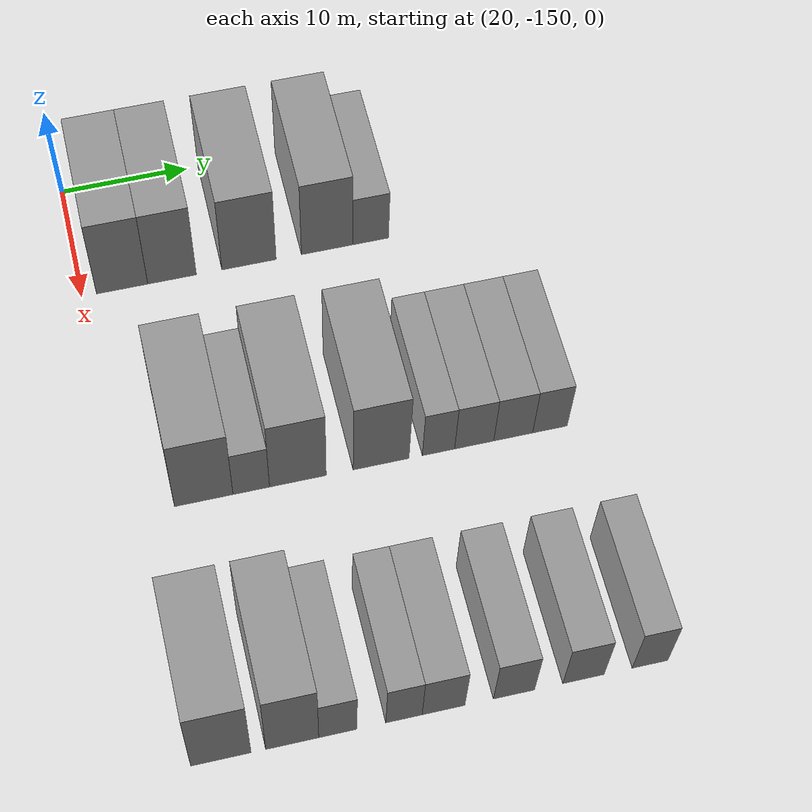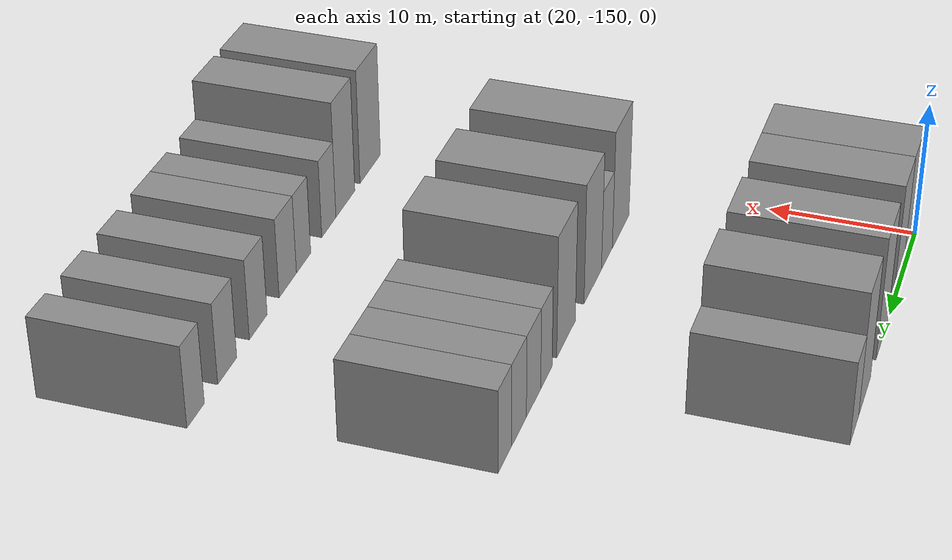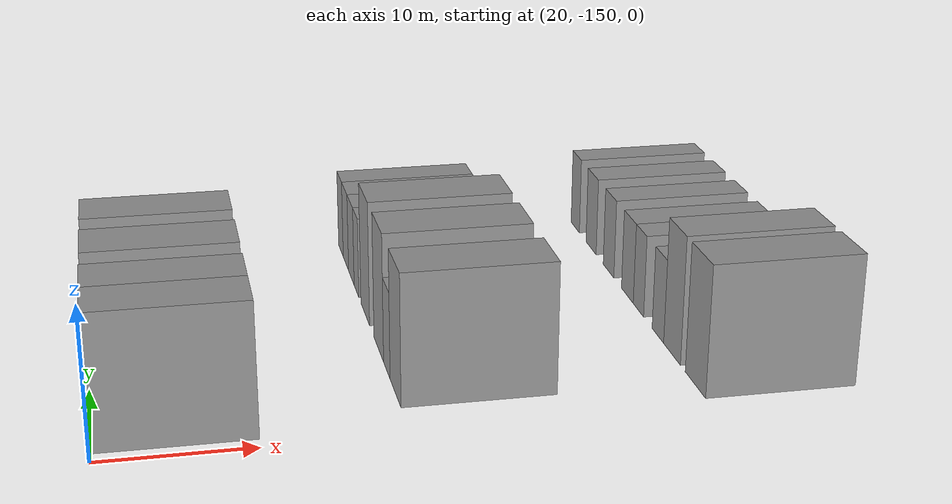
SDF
<sdf version="1.6">
 <world name="default">
  <model name="building_19">
   <static>1</static>
   <pose>25.0000 -146.8874 0 0.000000 0.000000 0.000000</pose>
   <link name="link">
    <pose>0 0 4.50 0 0 0</pose>
    <collision name="collision"><geometry><box><size>10.0000 3.9758 9.0000</size></box></geometry></collision>
    <visual name="visual">
     <cast_shadows>0</cast_shadows>
     <geometry><box><size>10.0000 3.9758 9.0000</size></box></geometry>
     <material>
      <script>
       <uri>model://grey_wall/materials/scripts</uri>
       <uri>model://grey_wall/materials/textures</uri>
       <name>vrc/grey_wall</name>
      </script>
     </material>
    </visual>
   </link>
  </model>
  <model name="building_20">
   <static>1</static>
   <pose>25.0000 -143.0052 0 0.000000 0.000000 0.000000</pose>
   <link name="link">
    <pose>0 0 4.50 0 0 0</pose>
    <collision name="collision"><geometry><box><size>10.0000 3.7887 9.0000</size></box></geometry></collision>
    <visual name="visual">
     <cast_shadows>0</cast_shadows>
     <geometry><box><size>10.0000 3.7887 9.0000</size></box></geometry>
     <material>
      <script>
       <uri>model://grey_wall/materials/scripts</uri>
       <uri>model://grey_wall/materials/textures</uri>
       <name>vrc/grey_wall</name>
      </script>
     </material>
    </visual>
   </link>
  </model>
  <model name="building_21">
   <static>1</static>
   <pose>25.0000 -136.9755 0 0.000000 0.000000 0.000000</pose>
   <link name="link">
    <pose>0 0 4.50 0 0 0</pose>
    <collision name="collision"><geometry><box><size>10.0000 4.2706 9.0000</size></box></geometry></collision>
    <visual name="visual">
     <cast_shadows>0</cast_shadows>
     <geometry><box><size>10.0000 4.2706 9.0000</size></box></geometry>
     <material>
      <script>
       <uri>model://grey_wall/materials/scripts</uri>
       <uri>model://grey_wall/materials/textures</uri>
       <name>vrc/grey_wall</name>
      </script>
     </material>
    </visual>
   </link>
  </model>
  <model name="building_22">
   <static>1</static>
   <pose>25.0000 -130.8090 0 0.000000 0.000000 0.000000</pose>
   <link name="link">
    <pose>0 0 4.50 0 0 0</pose>
    <collision name="collision"><geometry><box><size>10.0000 4.0625 9.0000</size></box></geometry></collision>
    <visual name="visual">
     <cast_shadows>0</cast_shadows>
     <geometry><box><size>10.0000 4.0625 9.0000</size></box></geometry>
     <material>
      <script>
       <uri>model://grey_wall/materials/scripts</uri>
       <uri>model://grey_wall/materials/textures</uri>
       <name>vrc/grey_wall</name>
      </script>
     </material>
    </visual>
   </link>
  </model>
  <model name="building_23">
   <static>1</static>
   <pose>25.0000 -127.3455 0 0.000000 0.000000 0.000000</pose>
   <link name="link">
    <pose>0 0 3.00 0 0 0</pose>
    <collision name="collision"><geometry><box><size>10.0000 2.8643 6.0000</size></box></geometry></collision>
    <visual name="visual">
     <cast_shadows>0</cast_shadows>
     <geometry><box><size>10.0000 2.8643 6.0000</size></box></geometry>
     <material>
      <script>
       <uri>model://grey_wall/materials/scripts</uri>
       <uri>model://grey_wall/materials/textures</uri>
       <name>vrc/grey_wall</name>
      </script>
     </material>
    </visual>
   </link>
  </model>
  <model name="building_125">
   <static>1</static>
   <pose>44.0000 -144.1393 0 0.000000 0.000000 0.000000</pose>
   <link name="link">
    <pose>0 0 4.50 0 0 0</pose>
    <collision name="collision"><geometry><box><size>10.0000 4.2760 9.0000</size></box></geometry></collision>
    <visual name="visual">
     <cast_shadows>0</cast_shadows>
     <geometry><box><size>10.0000 4.2760 9.0000</size></box></geometry>
     <material>
      <script>
       <uri>model://grey_wall/materials/scripts</uri>
       <uri>model://grey_wall/materials/textures</uri>
       <name>vrc/grey_wall</name>
      </script>
     </material>
    </visual>
   </link>
  </model>
  <model name="building_126">
   <static>1</static>
   <pose>44.0000 -140.6596 0 0.000000 0.000000 0.000000</pose>
   <link name="link">
    <pose>0 0 3.00 0 0 0</pose>
    <collision name="collision"><geometry><box><size>10.0000 2.6834 6.0000</size></box></geometry></collision>
    <visual name="visual">
     <cast_shadows>0</cast_shadows>
     <geometry><box><size>10.0000 2.6834 6.0000</size></box></geometry>
     <material>
      <script>
       <uri>model://grey_wall/materials/scripts</uri>
       <uri>model://grey_wall/materials/textures</uri>
       <name>vrc/grey_wall</name>
      </script>
     </material>
    </visual>
   </link>
  </model>
  <model name="building_127">
   <static>1</static>
   <pose>44.0000 -137.2256 0 0.000000 0.000000 0.000000</pose>
   <link name="link">
    <pose>0 0 4.50 0 0 0</pose>
    <collision name="collision"><geometry><box><size>10.0000 4.1845 9.0000</size></box></geometry></collision>
    <visual name="visual">
     <cast_shadows>0</cast_shadows>
     <geometry><box><size>10.0000 4.1845 9.0000</size></box></geometry>
     <material>
      <script>
       <uri>model://grey_wall/materials/scripts</uri>
       <uri>model://grey_wall/materials/textures</uri>
       <name>vrc/grey_wall</name>
      </script>
     </material>
    </visual>
   </link>
  </model>
  <model name="building_128">
   <static>1</static>
   <pose>44.0000 -131.0495 0 0.000000 0.000000 0.000000</pose>
   <link name="link">
    <pose>0 0 4.50 0 0 0</pose>
    <collision name="collision"><geometry><box><size>10.0000 4.1678 9.0000</size></box></geometry></collision>
    <visual name="visual">
     <cast_shadows>0</cast_shadows>
     <geometry><box><size>10.0000 4.1678 9.0000</size></box></geometry>
     <material>
      <script>
       <uri>model://grey_wall/materials/scripts</uri>
       <uri>model://grey_wall/materials/textures</uri>
       <name>vrc/grey_wall</name>
      </script>
     </material>
    </visual>
   </link>
  </model>
  <model name="building_129">
   <static>1</static>
   <pose>44.0000 -126.7523 0 0.000000 0.000000 0.000000</pose>
   <link name="link">
    <pose>0 0 3.00 0 0 0</pose>
    <collision name="collision"><geometry><box><size>10.0000 2.4265 6.0000</size></box></geometry></collision>
    <visual name="visual">
     <cast_shadows>0</cast_shadows>
     <geometry><box><size>10.0000 2.4265 6.0000</size></box></geometry>
     <material>
      <script>
       <uri>model://grey_wall/materials/scripts</uri>
       <uri>model://grey_wall/materials/textures</uri>
       <name>vrc/grey_wall</name>
      </script>
     </material>
    </visual>
   </link>
  </model>
  <model name="building_130">
   <static>1</static>
   <pose>44.0000 -124.0615 0 0.000000 0.000000 0.000000</pose>
   <link name="link">
    <pose>0 0 3.00 0 0 0</pose>
    <collision name="collision"><geometry><box><size>10.0000 2.9551 6.0000</size></box></geometry></collision>
    <visual name="visual">
     <cast_shadows>0</cast_shadows>
     <geometry><box><size>10.0000 2.9551 6.0000</size></box></geometry>
     <material>
      <script>
       <uri>model://grey_wall/materials/scripts</uri>
       <uri>model://grey_wall/materials/textures</uri>
       <name>vrc/grey_wall</name>
      </script>
     </material>
    </visual>
   </link>
  </model>
  <model name="building_131">
   <static>1</static>
   <pose>44.0000 -121.1086 0 0.000000 0.000000 0.000000</pose>
   <link name="link">
    <pose>0 0 3.00 0 0 0</pose>
    <collision name="collision"><geometry><box><size>10.0000 2.9508 6.0000</size></box></geometry></collision>
    <visual name="visual">
     <cast_shadows>0</cast_shadows>
     <geometry><box><size>10.0000 2.9508 6.0000</size></box></geometry>
     <material>
      <script>
       <uri>model://grey_wall/materials/scripts</uri>
       <uri>model://grey_wall/materials/textures</uri>
       <name>vrc/grey_wall</name>
      </script>
     </material>
    </visual>
   </link>
  </model>
  <model name="building_132">
   <static>1</static>
   <pose>44.0000 -118.3177 0 0.000000 0.000000 0.000000</pose>
   <link name="link">
    <pose>0 0 3.00 0 0 0</pose>
    <collision name="collision"><geometry><box><size>10.0000 2.6308 6.0000</size></box></geometry></collision>
    <visual name="visual">
     <cast_shadows>0</cast_shadows>
     <geometry><box><size>10.0000 2.6308 6.0000</size></box></geometry>
     <material>
      <script>
       <uri>model://grey_wall/materials/scripts</uri>
       <uri>model://grey_wall/materials/textures</uri>
       <name>vrc/grey_wall</name>
      </script>
     </material>
    </visual>
   </link>
  </model>
  <model name="building_233">
   <static>1</static>
   <pose>63.0000 -146.5828 0 0.000000 0.000000 0.000000</pose>
   <link name="link">
    <pose>0 0 4.50 0 0 0</pose>
    <collision name="collision"><geometry><box><size>10.0000 4.0930 9.0000</size></box></geometry></collision>
    <visual name="visual">
     <cast_shadows>0</cast_shadows>
     <geometry><box><size>10.0000 4.0930 9.0000</size></box></geometry>
     <material>
      <script>
       <uri>model://grey_wall/materials/scripts</uri>
       <uri>model://grey_wall/materials/textures</uri>
       <name>vrc/grey_wall</name>
      </script>
     </material>
    </visual>
   </link>
  </model>
  <model name="building_234">
   <static>1</static>
   <pose>63.0000 -141.7190 0 0.000000 0.000000 0.000000</pose>
   <link name="link">
    <pose>0 0 4.50 0 0 0</pose>
    <collision name="collision"><geometry><box><size>10.0000 3.6347 9.0000</size></box></geometry></collision>
    <visual name="visual">
     <cast_shadows>0</cast_shadows>
     <geometry><box><size>10.0000 3.6347 9.0000</size></box></geometry>
     <material>
      <script>
       <uri>model://grey_wall/materials/scripts</uri>
       <uri>model://grey_wall/materials/textures</uri>
       <name>vrc/grey_wall</name>
      </script>
     </material>
    </visual>
   </link>
  </model>
  <model name="building_235">
   <static>1</static>
   <pose>63.0000 -138.5916 0 0.000000 0.000000 0.000000</pose>
   <link name="link">
    <pose>0 0 3.00 0 0 0</pose>
    <collision name="collision"><geometry><box><size>10.0000 2.6200 6.0000</size></box></geometry></collision>
    <visual name="visual">
     <cast_shadows>0</cast_shadows>
     <geometry><box><size>10.0000 2.6200 6.0000</size></box></geometry>
     <material>
      <script>
       <uri>model://grey_wall/materials/scripts</uri>
       <uri>model://grey_wall/materials/textures</uri>
       <name>vrc/grey_wall</name>
      </script>
     </material>
    </visual>
   </link>
  </model>
  <model name="building_236">
   <static>1</static>
   <pose>63.0000 -134.0183 0 0.000000 0.000000 0.000000</pose>
   <link name="link">
    <pose>0 0 3.00 0 0 0</pose>
    <collision name="collision"><geometry><box><size>10.0000 2.5265 6.0000</size></box></geometry></collision>
    <visual name="visual">
     <cast_shadows>0</cast_shadows>
     <geometry><box><size>10.0000 2.5265 6.0000</size></box></geometry>
     <material>
      <script>
       <uri>model://grey_wall/materials/scripts</uri>
       <uri>model://grey_wall/materials/textures</uri>
       <name>vrc/grey_wall</name>
      </script>
     </material>
    </visual>
   </link>
  </model>
  <model name="building_237">
   <static>1</static>
   <pose>63.0000 -131.2645 0 0.000000 0.000000 0.000000</pose>
   <link name="link">
    <pose>0 0 3.00 0 0 0</pose>
    <collision name="collision"><geometry><box><size>10.0000 2.9813 6.0000</size></box></geometry></collision>
    <visual name="visual">
     <cast_shadows>0</cast_shadows>
     <geometry><box><size>10.0000 2.9813 6.0000</size></box></geometry>
     <material>
      <script>
       <uri>model://grey_wall/materials/scripts</uri>
       <uri>model://grey_wall/materials/textures</uri>
       <name>vrc/grey_wall</name>
      </script>
     </material>
    </visual>
   </link>
  </model>
  <model name="building_238">
   <static>1</static>
   <pose>63.0000 -126.3255 0 0.000000 0.000000 0.000000</pose>
   <link name="link">
    <pose>0 0 3.00 0 0 0</pose>
    <collision name="collision"><geometry><box><size>10.0000 2.8967 6.0000</size></box></geometry></collision>
    <visual name="visual">
     <cast_shadows>0</cast_shadows>
     <geometry><box><size>10.0000 2.8967 6.0000</size></box></geometry>
     <material>
      <script>
       <uri>model://grey_wall/materials/scripts</uri>
       <uri>model://grey_wall/materials/textures</uri>
       <name>vrc/grey_wall</name>
      </script>
     </material>
    </visual>
   </link>
  </model>
  <model name="building_239">
   <static>1</static>
   <pose>63.0000 -121.4090 0 0.000000 0.000000 0.000000</pose>
   <link name="link">
    <pose>0 0 3.00 0 0 0</pose>
    <collision name="collision"><geometry><box><size>10.0000 2.9363 6.0000</size></box></geometry></collision>
    <visual name="visual">
     <cast_shadows>0</cast_shadows>
     <geometry><box><size>10.0000 2.9363 6.0000</size></box></geometry>
     <material>
      <script>
       <uri>model://grey_wall/materials/scripts</uri>
       <uri>model://grey_wall/materials/textures</uri>
       <name>vrc/grey_wall</name>
      </script>
     </material>
    </visual>
   </link>
  </model>
  <model name="building_240">
   <static>1</static>
   <pose>63.0000 -116.6634 0 0.000000 0.000000 0.000000</pose>
   <link name="link">
    <pose>0 0 3.00 0 0 0</pose>
    <collision name="collision"><geometry><box><size>10.0000 2.5551 6.0000</size></box></geometry></collision>
    <visual name="visual">
     <cast_shadows>0</cast_shadows>
     <geometry><box><size>10.0000 2.5551 6.0000</size></box></geometry>
     <material>
      <script>
       <uri>model://grey_wall/materials/scripts</uri>
       <uri>model://grey_wall/materials/textures</uri>
       <name>vrc/grey_wall</name>
      </script>
     </material>
    </visual>
   </link>
  </model>
 </world>
</sdf>
